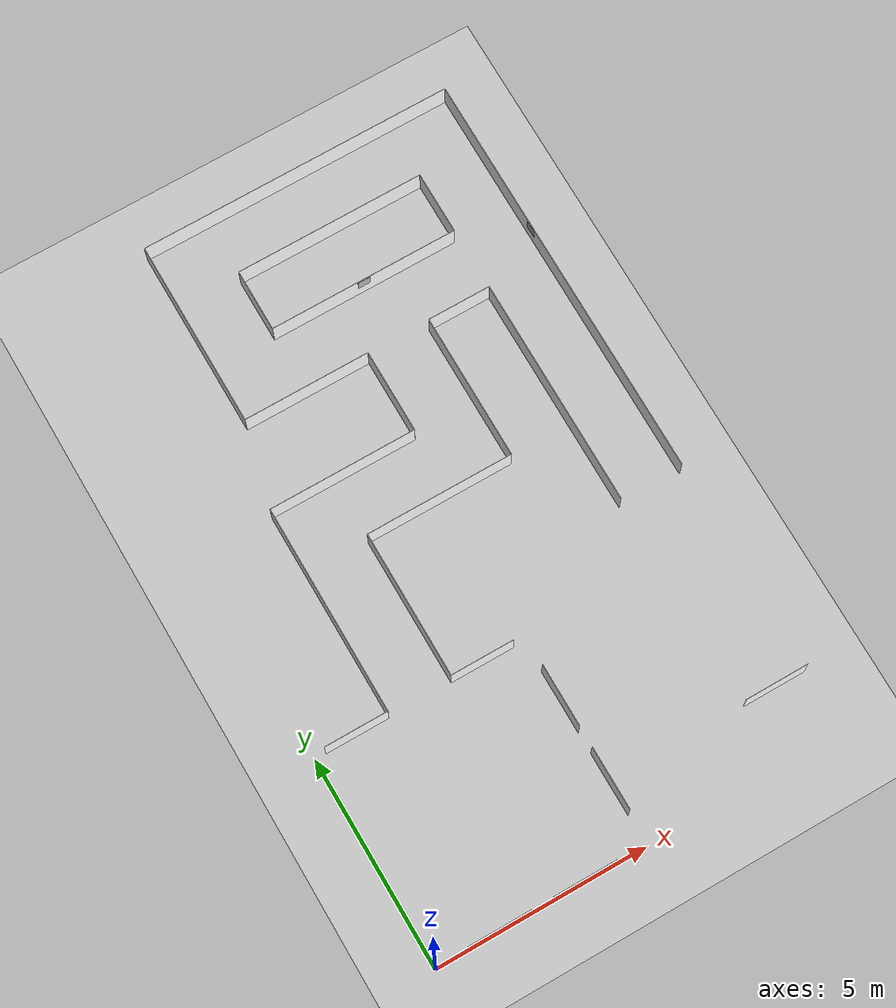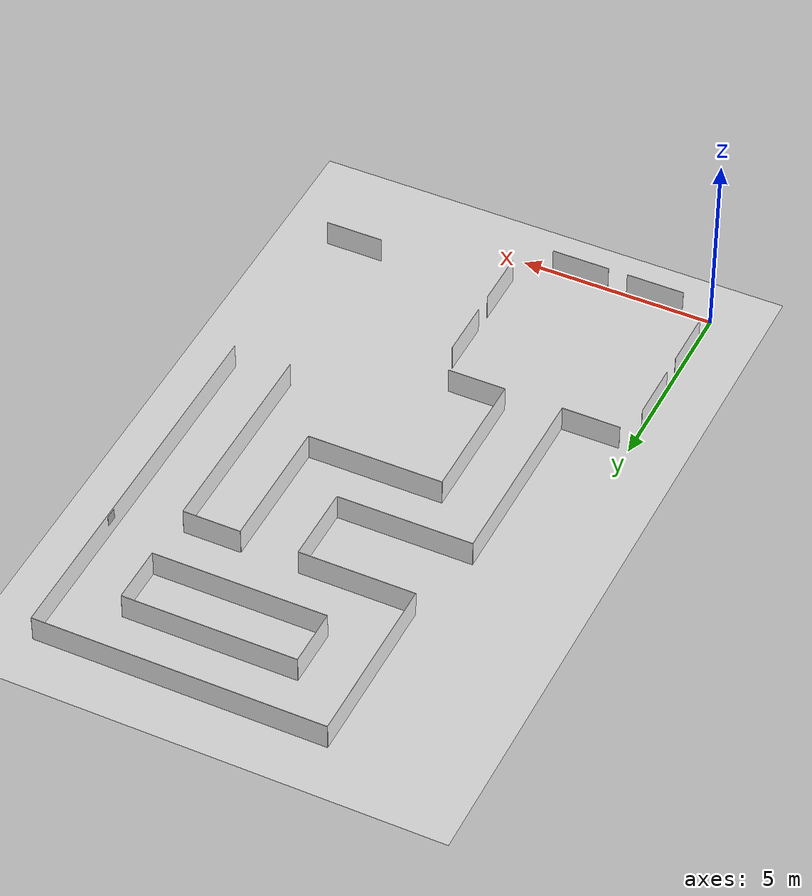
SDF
<sdf version="1.6">
 <world name="circuito_cuadrado">
  <include><uri>model://sun</uri></include>
  <include><uri>model://ground_plane</uri></include>
  <model name="wall_left_1">
   <static>true</static>
   <link name="link">
    <visual name="visual">
     <geometry><box><size>1.5 0.01 0.7</size></box></geometry>
     <material><ambient>1 1 1 1</ambient></material>
    </visual>
    <collision name="collision"><geometry><box><size>1.5 0.01 0.7</size></box></geometry></collision>
   </link>
   <pose>0.0 1.5 0.35 0 0 1.5708</pose>
  </model>
  <model name="wall_left_2">
   <static>true</static>
   <link name="link">
    <visual name="visual">
     <geometry><box><size>1.5 0.01 0.7</size></box></geometry>
     <material><ambient>1 1 1 1</ambient></material>
    </visual>
    <collision name="collision"><geometry><box><size>1.5 0.01 0.7</size></box></geometry></collision>
   </link>
   <pose>0.0 3.5 0.35 0 0 1.5708</pose>
  </model>
  <model name="wall_right_1">
   <static>true</static>
   <link name="link">
    <visual name="visual">
     <geometry><box><size>1.5 0.01 0.7</size></box></geometry>
     <material><ambient>1 1 1 1</ambient></material>
    </visual>
    <collision name="collision"><geometry><box><size>1.5 0.01 0.7</size></box></geometry></collision>
   </link>
   <pose>5 1.5 0.35 0 0 1.5708</pose>
  </model>
  <model name="wall_right_2">
   <static>true</static>
   <link name="link">
    <visual name="visual">
     <geometry><box><size>1.5 0.01 0.7</size></box></geometry>
     <material><ambient>1 1 1 1</ambient></material>
    </visual>
    <collision name="collision"><geometry><box><size>1.5 0.01 0.7</size></box></geometry></collision>
   </link>
   <pose>5 3.5 0.35 0 0 1.5708</pose>
  </model>
  <model name="wall_top_1">
   <static>true</static>
   <link name="link">
    <visual name="visual">
     <geometry><box><size>1.5 0.01 0.7</size></box></geometry>
     <material><ambient>1 1 1 1</ambient></material>
    </visual>
    <collision name="collision"><geometry><box><size>1.5 0.01 0.7</size></box></geometry></collision>
   </link>
   <pose>1 5 0.35 0 0 0</pose>
  </model>
  <model name="wall_top_2">
   <static>true</static>
   <link name="link">
    <visual name="visual">
     <geometry><box><size>1.5 0.01 0.7</size></box></geometry>
     <material><ambient>1 1 1 1</ambient></material>
    </visual>
    <collision name="collision"><geometry><box><size>1.5 0.01 0.7</size></box></geometry></collision>
   </link>
   <pose>4 5 0.35 0 0 0</pose>
  </model>
  <model name="wall_bottom_1">
   <static>true</static>
   <link name="link">
    <visual name="visual">
     <geometry><box><size>1.5 0.01 0.7</size></box></geometry>
     <material><ambient>1 1 1 1</ambient></material>
    </visual>
    <collision name="collision"><geometry><box><size>1.5 0.01 0.7</size></box></geometry></collision>
   </link>
   <pose>1.5 0 0.35 0 0 0</pose>
  </model>
  <model name="wall_bottom_2">
   <static>true</static>
   <link name="link">
    <visual name="visual">
     <geometry><box><size>1.5 0.01 0.7</size></box></geometry>
     <material><ambient>1 1 1 1</ambient></material>
    </visual>
    <collision name="collision"><geometry><box><size>1.5 0.01 0.7</size></box></geometry></collision>
   </link>
   <pose>3.5 0 0.35 0 0 0</pose>
  </model>
  <model name="wall_passillo_ini_d">
   <static>true</static>
   <link name="link">
    <visual name="visual">
     <geometry><box><size>3.5 0.01 0.7</size></box></geometry>
     <material><ambient>1 1 1 1</ambient></material>
    </visual>
    <collision name="collision"><geometry><box><size>3.5 0.01 0.7</size></box></geometry></collision>
   </link>
   <pose>3.25 6.75 0.35 0 0 1.5708</pose>
  </model>
  <model name="wall_passillo_ini_i">
   <static>true</static>
   <link name="link">
    <visual name="visual">
     <geometry><box><size>5 0.01 0.7</size></box></geometry>
     <material><ambient>1 1 1 1</ambient></material>
    </visual>
    <collision name="collision"><geometry><box><size>5 0.01 0.7</size></box></geometry></collision>
   </link>
   <pose>1.75 7.5 0.35 0 0 1.5708</pose>
  </model>
  <model name="wall_pasillo_2_i">
   <static>true</static>
   <link name="link">
    <visual name="visual">
     <geometry><box><size>3.5 0.01 0.7</size></box></geometry>
     <material><ambient>1 1 1 1</ambient></material>
    </visual>
    <collision name="collision"><geometry><box><size>3.5 0.01 0.7</size></box></geometry></collision>
   </link>
   <pose>3.5 10 0.35 0 0 0</pose>
  </model>
  <model name="wall_pasillo_2_d">
   <static>true</static>
   <link name="link">
    <visual name="visual">
     <geometry><box><size>3.5 0.01 0.7</size></box></geometry>
     <material><ambient>1 1 1 1</ambient></material>
    </visual>
    <collision name="collision"><geometry><box><size>3.5 0.01 0.7</size></box></geometry></collision>
   </link>
   <pose>5.0 8.5 0.35 0 0 0</pose>
  </model>
  <model name="wall_passillo_3_d">
   <static>true</static>
   <link name="link">
    <visual name="visual">
     <geometry><box><size>3.5 0.01 0.7</size></box></geometry>
     <material><ambient>1 1 1 1</ambient></material>
    </visual>
    <collision name="collision"><geometry><box><size>3.5 0.01 0.7</size></box></geometry></collision>
   </link>
   <pose>6.75 10.25 0.35 0 0 1.5708</pose>
  </model>
  <model name="wall_passillo_3_i">
   <static>true</static>
   <link name="link">
    <visual name="visual">
     <geometry><box><size>2 0.01 0.7</size></box></geometry>
     <material><ambient>1 1 1 1</ambient></material>
    </visual>
    <collision name="collision"><geometry><box><size>2 0.01 0.7</size></box></geometry></collision>
   </link>
   <pose>5.25 11 0.35 0 0 1.5708</pose>
  </model>
  <model name="wall_island_i">
   <static>true</static>
   <link name="link">
    <visual name="visual">
     <geometry><box><size>1.5 0.01 0.7</size></box></geometry>
     <material><ambient>1 1 1 1</ambient></material>
    </visual>
    <collision name="collision"><geometry><box><size>1.5 0.01 0.7</size></box></geometry></collision>
   </link>
   <pose>3.75 14.25 0.35 0 0 1.5708</pose>
  </model>
  <model name="wall_island_d">
   <static>true</static>
   <link name="link">
    <visual name="visual">
     <geometry><box><size>1.5 0.01 0.7</size></box></geometry>
     <material><ambient>1 1 1 1</ambient></material>
    </visual>
    <collision name="collision"><geometry><box><size>1.5 0.01 0.7</size></box></geometry></collision>
   </link>
   <pose>8.25 14.25 0.35 0 0 1.5708</pose>
  </model>
  <model name="wall_island_inf">
   <static>true</static>
   <link name="link">
    <visual name="visual">
     <geometry><box><size>4.5 0.01 0.7</size></box></geometry>
     <material><ambient>1 1 1 1</ambient></material>
    </visual>
    <collision name="collision"><geometry><box><size>4.5 0.01 0.7</size></box></geometry></collision>
   </link>
   <pose>6 13.5 0.35 0 0 0</pose>
  </model>
  <model name="wall_island_sup">
   <static>true</static>
   <link name="link">
    <visual name="visual">
     <geometry><box><size>4.5 0.01 0.7</size></box></geometry>
     <material><ambient>1 1 1 1</ambient></material>
    </visual>
    <collision name="collision"><geometry><box><size>4.5 0.01 0.7</size></box></geometry></collision>
   </link>
   <pose>6 15.0 0.35 0 0 0</pose>
  </model>
  <model name="wall_island_fuera_inf_d">
   <static>true</static>
   <link name="link">
    <visual name="visual">
     <geometry><box><size>1.5 0.01 0.7</size></box></geometry>
     <material><ambient>1 1 1 1</ambient></material>
    </visual>
    <collision name="collision"><geometry><box><size>1.5 0.01 0.7</size></box></geometry></collision>
   </link>
   <pose>7.5 12.0 0.35 0 0 0</pose>
  </model>
  <model name="wall_island_fuera_inf_i">
   <static>true</static>
   <link name="link">
    <visual name="visual">
     <geometry><box><size>3 0.01 0.7</size></box></geometry>
     <material><ambient>1 1 1 1</ambient></material>
    </visual>
    <collision name="collision"><geometry><box><size>3 0.01 0.7</size></box></geometry></collision>
   </link>
   <pose>3.75 12 0.35 0 0 0</pose>
  </model>
  <model name="wall_island_fuera_i">
   <static>true</static>
   <link name="link">
    <visual name="visual">
     <geometry><box><size>4.5 0.01 0.7</size></box></geometry>
     <material><ambient>1 1 1 1</ambient></material>
    </visual>
    <collision name="collision"><geometry><box><size>4.5 0.01 0.7</size></box></geometry></collision>
   </link>
   <pose>2.25 14.25 0.35 0 0 1.5708</pose>
  </model>
  <model name="wall_island_fuera_sup">
   <static>true</static>
   <link name="link">
    <visual name="visual">
     <geometry><box><size>7.5 0.01 0.7</size></box></geometry>
     <material><ambient>1 1 1 1</ambient></material>
    </visual>
    <collision name="collision"><geometry><box><size>7.5 0.01 0.7</size></box></geometry></collision>
   </link>
   <pose>6 16.5 0.35 0 0 0</pose>
  </model>
  <model name="wall_pasillo_final_i">
   <static>true</static>
   <link name="link">
    <visual name="visual">
     <geometry><box><size>10 0.01 0.7</size></box></geometry>
     <material><ambient>1 1 1 1</ambient></material>
    </visual>
    <collision name="collision"><geometry><box><size>10 0.01 0.7</size></box></geometry></collision>
   </link>
   <pose>9.75 11.5 0.35 0 0 1.5708</pose>
  </model>
  <model name="wall_pasillo_final_d">
   <static>true</static>
   <link name="link">
    <visual name="visual">
     <geometry><box><size>5.5 0.01 0.7</size></box></geometry>
     <material><ambient>1 1 1 1</ambient></material>
    </visual>
    <collision name="collision"><geometry><box><size>5.5 0.01 0.7</size></box></geometry></collision>
   </link>
   <pose>8.25 9.25 0.35 0 0 1.5708</pose>
  </model>
  <model name="wall_final">
   <static>true</static>
   <link name="link">
    <visual name="visual">
     <geometry><box><size>1.5 0.01 0.7</size></box></geometry>
     <material><ambient>1 1 1 1</ambient></material>
    </visual>
    <collision name="collision"><geometry><box><size>1.5 0.01 0.7</size></box></geometry></collision>
   </link>
   <pose>9 1.5 0.35 0 0 0</pose>
  </model>
  <include><uri>model://5x5_1000-10</uri><name>aruco_10_1</name><pose>6 13.495 0.35 0 0 1.5708</pose></include>
  <include>
   <uri>model://5x5_1000-10</uri>
   <name>aruco_10_2</name>
   <pose>9.745 12.75 0.35 0 0 3.14159</pose>
  </include>
 </world>
</sdf>

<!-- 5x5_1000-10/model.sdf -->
<sdf version="1.6">
  <model name="5x5_1000-10">
    <static>true</static>
    <link name="link">
      <visual name="visual">
        <geometry>
          <mesh>
            <uri>model://5x5_1000-10/meshes/5x5_1000-10.dae</uri>
          <scale>0.6 0.6 0.6</scale></mesh>
        </geometry>
      </visual>
    </link>
  </model>
</sdf>
